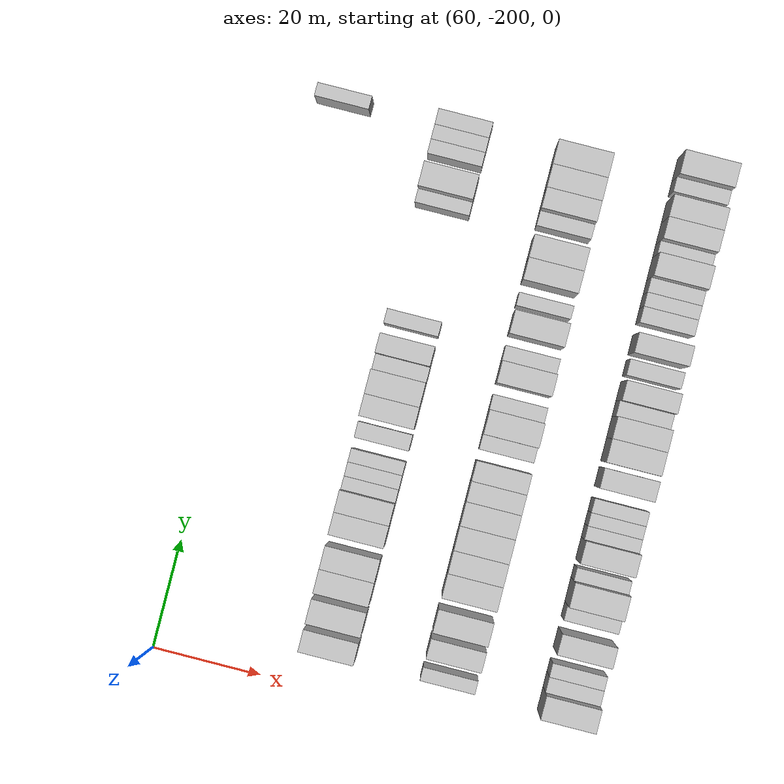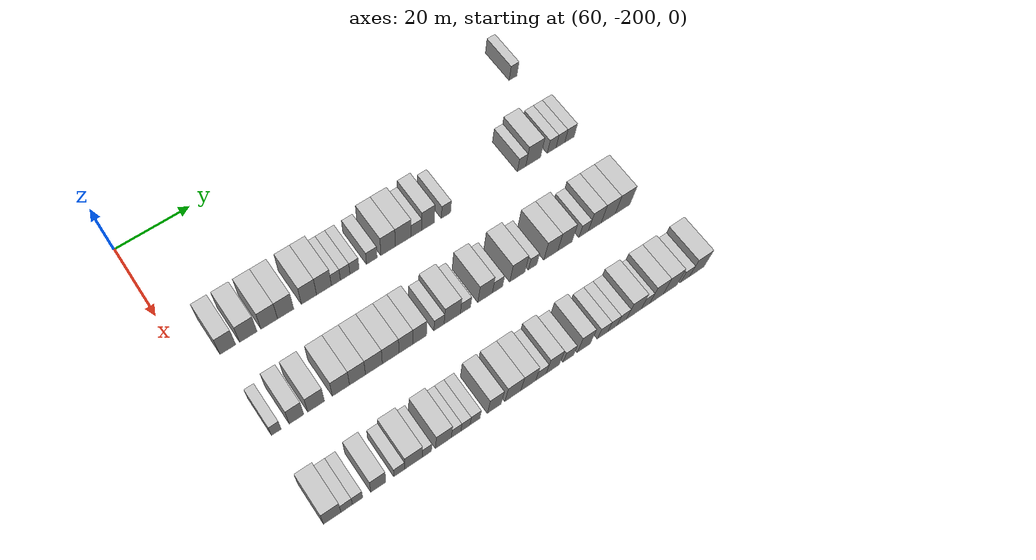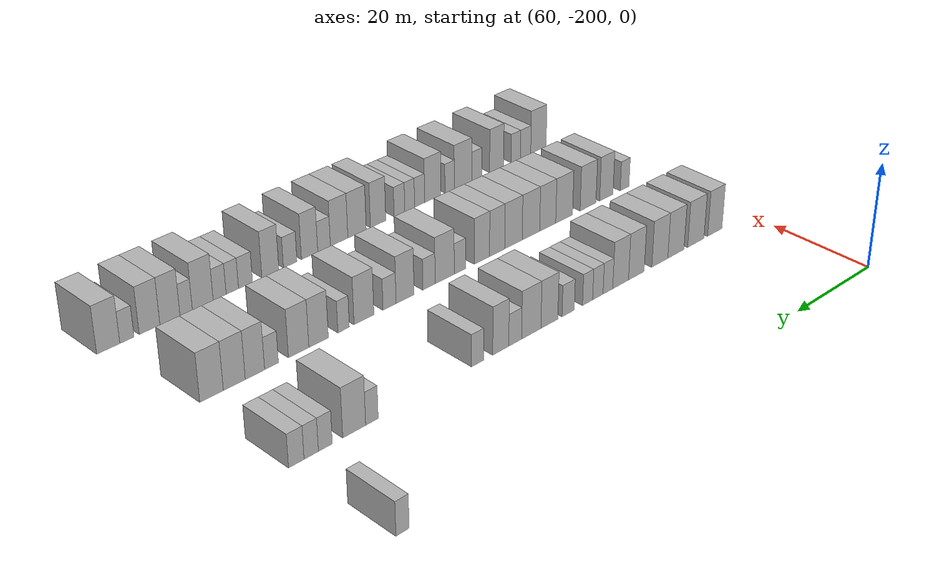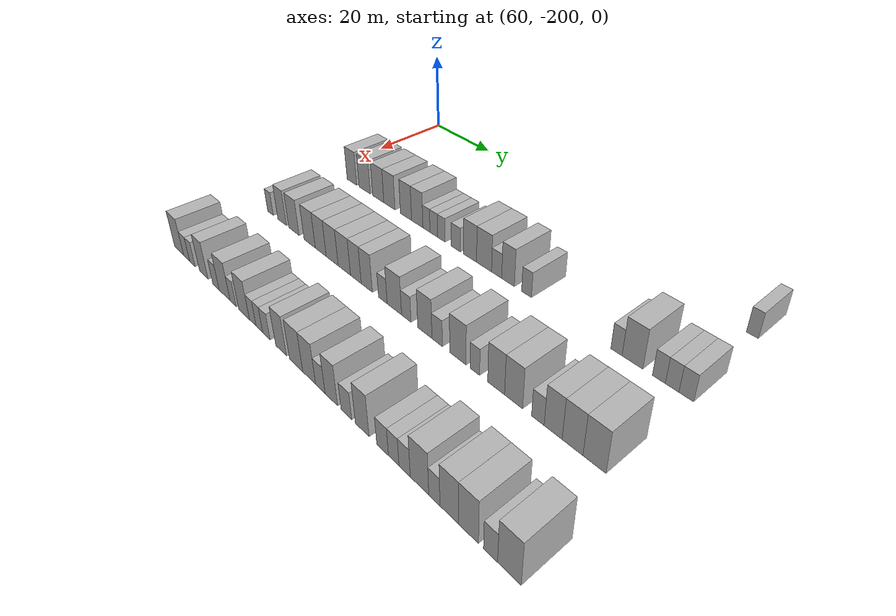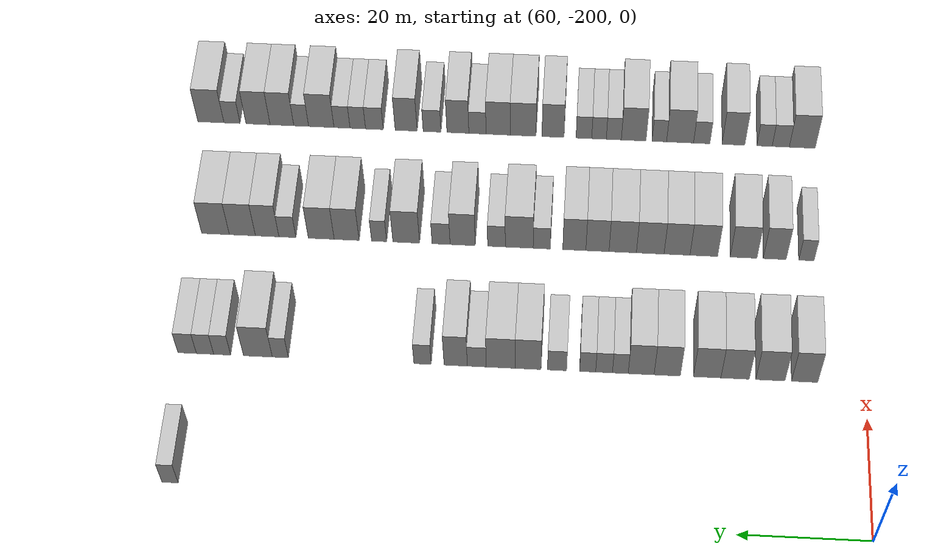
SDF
<sdf version="1.6">
 <world name="default">
  <model name="building_452">
   <static>1</static>
   <pose>69.0000 -95.8036 0 0.000000 0.000000 0.000000</pose>
   <link name="link">
    <pose>0 0 3.00 0 0 0</pose>
    <collision name="collision"><geometry><box><size>10.0000 2.4370 6.0000</size></box></geometry></collision>
    <visual name="visual">
     <cast_shadows>0</cast_shadows>
     <geometry><box><size>10.0000 2.4370 6.0000</size></box></geometry>
     <material>
      <script>
       <uri>model://HANNAS_wall/materials/scripts</uri>
       <uri>model://HANNAS_wall/materials/textures</uri>
       <name>vrc/HANNAS_wall</name>
      </script>
     </material>
    </visual>
   </link>
  </model>
  <model name="building_624">
   <static>1</static>
   <pose>91.0000 -190.6196 0 0.000000 0.000000 0.000000</pose>
   <link name="link">
    <pose>0 0 4.50 0 0 0</pose>
    <collision name="collision"><geometry><box><size>10.0000 4.0217 9.0000</size></box></geometry></collision>
    <visual name="visual">
     <cast_shadows>0</cast_shadows>
     <geometry><box><size>10.0000 4.0217 9.0000</size></box></geometry>
     <material>
      <script>
       <uri>model://HANNAS_wall/materials/scripts</uri>
       <uri>model://HANNAS_wall/materials/textures</uri>
       <name>vrc/HANNAS_wall</name>
      </script>
     </material>
    </visual>
   </link>
  </model>
  <model name="building_625">
   <static>1</static>
   <pose>91.0000 -185.3649 0 0.000000 0.000000 0.000000</pose>
   <link name="link">
    <pose>0 0 4.50 0 0 0</pose>
    <collision name="collision"><geometry><box><size>10.0000 4.4876 9.0000</size></box></geometry></collision>
    <visual name="visual">
     <cast_shadows>0</cast_shadows>
     <geometry><box><size>10.0000 4.4876 9.0000</size></box></geometry>
     <material>
      <script>
       <uri>model://HANNAS_wall/materials/scripts</uri>
       <uri>model://HANNAS_wall/materials/textures</uri>
       <name>vrc/HANNAS_wall</name>
      </script>
     </material>
    </visual>
   </link>
  </model>
  <model name="building_626">
   <static>1</static>
   <pose>91.0000 -179.9483 0 0.000000 0.000000 0.000000</pose>
   <link name="link">
    <pose>0 0 4.50 0 0 0</pose>
    <collision name="collision"><geometry><box><size>10.0000 4.3456 9.0000</size></box></geometry></collision>
    <visual name="visual">
     <cast_shadows>0</cast_shadows>
     <geometry><box><size>10.0000 4.3456 9.0000</size></box></geometry>
     <material>
      <script>
       <uri>model://HANNAS_wall/materials/scripts</uri>
       <uri>model://HANNAS_wall/materials/textures</uri>
       <name>vrc/HANNAS_wall</name>
      </script>
     </material>
    </visual>
   </link>
  </model>
  <model name="building_627">
   <static>1</static>
   <pose>91.0000 -175.6586 0 0.000000 0.000000 0.000000</pose>
   <link name="link">
    <pose>0 0 4.50 0 0 0</pose>
    <collision name="collision"><geometry><box><size>10.0000 4.2337 9.0000</size></box></geometry></collision>
    <visual name="visual">
     <cast_shadows>0</cast_shadows>
     <geometry><box><size>10.0000 4.2337 9.0000</size></box></geometry>
     <material>
      <script>
       <uri>model://HANNAS_wall/materials/scripts</uri>
       <uri>model://HANNAS_wall/materials/textures</uri>
       <name>vrc/HANNAS_wall</name>
      </script>
     </material>
    </visual>
   </link>
  </model>
  <model name="building_628">
   <static>1</static>
   <pose>91.0000 -169.5216 0 0.000000 0.000000 0.000000</pose>
   <link name="link">
    <pose>0 0 4.50 0 0 0</pose>
    <collision name="collision"><geometry><box><size>10.0000 4.0404 9.0000</size></box></geometry></collision>
    <visual name="visual">
     <cast_shadows>0</cast_shadows>
     <geometry><box><size>10.0000 4.0404 9.0000</size></box></geometry>
     <material>
      <script>
       <uri>model://HANNAS_wall/materials/scripts</uri>
       <uri>model://HANNAS_wall/materials/textures</uri>
       <name>vrc/HANNAS_wall</name>
      </script>
     </material>
    </visual>
   </link>
  </model>
  <model name="building_629">
   <static>1</static>
   <pose>91.0000 -165.5064 0 0.000000 0.000000 0.000000</pose>
   <link name="link">
    <pose>0 0 4.50 0 0 0</pose>
    <collision name="collision"><geometry><box><size>10.0000 3.9899 9.0000</size></box></geometry></collision>
    <visual name="visual">
     <cast_shadows>0</cast_shadows>
     <geometry><box><size>10.0000 3.9899 9.0000</size></box></geometry>
     <material>
      <script>
       <uri>model://HANNAS_wall/materials/scripts</uri>
       <uri>model://HANNAS_wall/materials/textures</uri>
       <name>vrc/HANNAS_wall</name>
      </script>
     </material>
    </visual>
   </link>
  </model>
  <model name="building_630">
   <static>1</static>
   <pose>91.0000 -162.2946 0 0.000000 0.000000 0.000000</pose>
   <link name="link">
    <pose>0 0 3.00 0 0 0</pose>
    <collision name="collision"><geometry><box><size>10.0000 2.4337 6.0000</size></box></geometry></collision>
    <visual name="visual">
     <cast_shadows>0</cast_shadows>
     <geometry><box><size>10.0000 2.4337 6.0000</size></box></geometry>
     <material>
      <script>
       <uri>model://HANNAS_wall/materials/scripts</uri>
       <uri>model://HANNAS_wall/materials/textures</uri>
       <name>vrc/HANNAS_wall</name>
      </script>
     </material>
    </visual>
   </link>
  </model>
  <model name="building_631">
   <static>1</static>
   <pose>91.0000 -159.7884 0 0.000000 0.000000 0.000000</pose>
   <link name="link">
    <pose>0 0 3.00 0 0 0</pose>
    <collision name="collision"><geometry><box><size>10.0000 2.5787 6.0000</size></box></geometry></collision>
    <visual name="visual">
     <cast_shadows>0</cast_shadows>
     <geometry><box><size>10.0000 2.5787 6.0000</size></box></geometry>
     <material>
      <script>
       <uri>model://HANNAS_wall/materials/scripts</uri>
       <uri>model://HANNAS_wall/materials/textures</uri>
       <name>vrc/HANNAS_wall</name>
      </script>
     </material>
    </visual>
   </link>
  </model>
  <model name="building_632">
   <static>1</static>
   <pose>91.0000 -157.2615 0 0.000000 0.000000 0.000000</pose>
   <link name="link">
    <pose>0 0 3.00 0 0 0</pose>
    <collision name="collision"><geometry><box><size>10.0000 2.4750 6.0000</size></box></geometry></collision>
    <visual name="visual">
     <cast_shadows>0</cast_shadows>
     <geometry><box><size>10.0000 2.4750 6.0000</size></box></geometry>
     <material>
      <script>
       <uri>model://HANNAS_wall/materials/scripts</uri>
       <uri>model://HANNAS_wall/materials/textures</uri>
       <name>vrc/HANNAS_wall</name>
      </script>
     </material>
    </visual>
   </link>
  </model>
  <model name="building_633">
   <static>1</static>
   <pose>91.0000 -152.5520 0 0.000000 0.000000 0.000000</pose>
   <link name="link">
    <pose>0 0 3.00 0 0 0</pose>
    <collision name="collision"><geometry><box><size>10.0000 2.9441 6.0000</size></box></geometry></collision>
    <visual name="visual">
     <cast_shadows>0</cast_shadows>
     <geometry><box><size>10.0000 2.9441 6.0000</size></box></geometry>
     <material>
      <script>
       <uri>model://HANNAS_wall/materials/scripts</uri>
       <uri>model://HANNAS_wall/materials/textures</uri>
       <name>vrc/HANNAS_wall</name>
      </script>
     </material>
    </visual>
   </link>
  </model>
  <model name="building_634">
   <static>1</static>
   <pose>91.0000 -148.0857 0 0.000000 0.000000 0.000000</pose>
   <link name="link">
    <pose>0 0 4.50 0 0 0</pose>
    <collision name="collision"><geometry><box><size>10.0000 3.9885 9.0000</size></box></geometry></collision>
    <visual name="visual">
     <cast_shadows>0</cast_shadows>
     <geometry><box><size>10.0000 3.9885 9.0000</size></box></geometry>
     <material>
      <script>
       <uri>model://HANNAS_wall/materials/scripts</uri>
       <uri>model://HANNAS_wall/materials/textures</uri>
       <name>vrc/HANNAS_wall</name>
      </script>
     </material>
    </visual>
   </link>
  </model>
  <model name="building_635">
   <static>1</static>
   <pose>91.0000 -143.8581 0 0.000000 0.000000 0.000000</pose>
   <link name="link">
    <pose>0 0 4.50 0 0 0</pose>
    <collision name="collision"><geometry><box><size>10.0000 4.4666 9.0000</size></box></geometry></collision>
    <visual name="visual">
     <cast_shadows>0</cast_shadows>
     <geometry><box><size>10.0000 4.4666 9.0000</size></box></geometry>
     <material>
      <script>
       <uri>model://HANNAS_wall/materials/scripts</uri>
       <uri>model://HANNAS_wall/materials/textures</uri>
       <name>vrc/HANNAS_wall</name>
      </script>
     </material>
    </visual>
   </link>
  </model>
  <model name="building_636">
   <static>1</static>
   <pose>91.0000 -140.1616 0 0.000000 0.000000 0.000000</pose>
   <link name="link">
    <pose>0 0 3.00 0 0 0</pose>
    <collision name="collision"><geometry><box><size>10.0000 2.9263 6.0000</size></box></geometry></collision>
    <visual name="visual">
     <cast_shadows>0</cast_shadows>
     <geometry><box><size>10.0000 2.9263 6.0000</size></box></geometry>
     <material>
      <script>
       <uri>model://HANNAS_wall/materials/scripts</uri>
       <uri>model://HANNAS_wall/materials/textures</uri>
       <name>vrc/HANNAS_wall</name>
      </script>
     </material>
    </visual>
   </link>
  </model>
  <model name="building_637">
   <static>1</static>
   <pose>91.0000 -136.8978 0 0.000000 0.000000 0.000000</pose>
   <link name="link">
    <pose>0 0 4.50 0 0 0</pose>
    <collision name="collision"><geometry><box><size>10.0000 3.6014 9.0000</size></box></geometry></collision>
    <visual name="visual">
     <cast_shadows>0</cast_shadows>
     <geometry><box><size>10.0000 3.6014 9.0000</size></box></geometry>
     <material>
      <script>
       <uri>model://HANNAS_wall/materials/scripts</uri>
       <uri>model://HANNAS_wall/materials/textures</uri>
       <name>vrc/HANNAS_wall</name>
      </script>
     </material>
    </visual>
   </link>
  </model>
  <model name="building_638">
   <static>1</static>
   <pose>91.0000 -131.7656 0 0.000000 0.000000 0.000000</pose>
   <link name="link">
    <pose>0 0 3.00 0 0 0</pose>
    <collision name="collision"><geometry><box><size>10.0000 2.6628 6.0000</size></box></geometry></collision>
    <visual name="visual">
     <cast_shadows>0</cast_shadows>
     <geometry><box><size>10.0000 2.6628 6.0000</size></box></geometry>
     <material>
      <script>
       <uri>model://HANNAS_wall/materials/scripts</uri>
       <uri>model://HANNAS_wall/materials/textures</uri>
       <name>vrc/HANNAS_wall</name>
      </script>
     </material>
    </visual>
   </link>
  </model>
  <model name="building_639">
   <static>1</static>
   <pose>91.0000 -109.6894 0 0.000000 0.000000 0.000000</pose>
   <link name="link">
    <pose>0 0 3.00 0 0 0</pose>
    <collision name="collision"><geometry><box><size>10.0000 2.4965 6.0000</size></box></geometry></collision>
    <visual name="visual">
     <cast_shadows>0</cast_shadows>
     <geometry><box><size>10.0000 2.4965 6.0000</size></box></geometry>
     <material>
      <script>
       <uri>model://HANNAS_wall/materials/scripts</uri>
       <uri>model://HANNAS_wall/materials/textures</uri>
       <name>vrc/HANNAS_wall</name>
      </script>
     </material>
    </visual>
   </link>
  </model>
  <model name="building_640">
   <static>1</static>
   <pose>91.0000 -106.2002 0 0.000000 0.000000 0.000000</pose>
   <link name="link">
    <pose>0 0 4.50 0 0 0</pose>
    <collision name="collision"><geometry><box><size>10.0000 4.4820 9.0000</size></box></geometry></collision>
    <visual name="visual">
     <cast_shadows>0</cast_shadows>
     <geometry><box><size>10.0000 4.4820 9.0000</size></box></geometry>
     <material>
      <script>
       <uri>model://HANNAS_wall/materials/scripts</uri>
       <uri>model://HANNAS_wall/materials/textures</uri>
       <name>vrc/HANNAS_wall</name>
      </script>
     </material>
    </visual>
   </link>
  </model>
  <model name="building_641">
   <static>1</static>
   <pose>91.0000 -100.6351 0 0.000000 0.000000 0.000000</pose>
   <link name="link">
    <pose>0 0 3.00 0 0 0</pose>
    <collision name="collision"><geometry><box><size>10.0000 2.6483 6.0000</size></box></geometry></collision>
    <visual name="visual">
     <cast_shadows>0</cast_shadows>
     <geometry><box><size>10.0000 2.6483 6.0000</size></box></geometry>
     <material>
      <script>
       <uri>model://HANNAS_wall/materials/scripts</uri>
       <uri>model://HANNAS_wall/materials/textures</uri>
       <name>vrc/HANNAS_wall</name>
      </script>
     </material>
    </visual>
   </link>
  </model>
  <model name="building_642">
   <static>1</static>
   <pose>91.0000 -97.9629 0 0.000000 0.000000 0.000000</pose>
   <link name="link">
    <pose>0 0 3.00 0 0 0</pose>
    <collision name="collision"><geometry><box><size>10.0000 2.6959 6.0000</size></box></geometry></collision>
    <visual name="visual">
     <cast_shadows>0</cast_shadows>
     <geometry><box><size>10.0000 2.6959 6.0000</size></box></geometry>
     <material>
      <script>
       <uri>model://HANNAS_wall/materials/scripts</uri>
       <uri>model://HANNAS_wall/materials/textures</uri>
       <name>vrc/HANNAS_wall</name>
      </script>
     </material>
    </visual>
   </link>
  </model>
  <model name="building_643">
   <static>1</static>
   <pose>91.0000 -95.1738 0 0.000000 0.000000 0.000000</pose>
   <link name="link">
    <pose>0 0 3.00 0 0 0</pose>
    <collision name="collision"><geometry><box><size>10.0000 2.8823 6.0000</size></box></geometry></collision>
    <visual name="visual">
     <cast_shadows>0</cast_shadows>
     <geometry><box><size>10.0000 2.8823 6.0000</size></box></geometry>
     <material>
      <script>
       <uri>model://HANNAS_wall/materials/scripts</uri>
       <uri>model://HANNAS_wall/materials/textures</uri>
       <name>vrc/HANNAS_wall</name>
      </script>
     </material>
    </visual>
   </link>
  </model>
  <model name="building_816">
   <static>1</static>
   <pose>113.0000 -191.4887 0 0.000000 0.000000 0.000000</pose>
   <link name="link">
    <pose>0 0 3.00 0 0 0</pose>
    <collision name="collision"><geometry><box><size>10.0000 2.4426 6.0000</size></box></geometry></collision>
    <visual name="visual">
     <cast_shadows>0</cast_shadows>
     <geometry><box><size>10.0000 2.4426 6.0000</size></box></geometry>
     <material>
      <script>
       <uri>model://HANNAS_wall/materials/scripts</uri>
       <uri>model://HANNAS_wall/materials/textures</uri>
       <name>vrc/HANNAS_wall</name>
      </script>
     </material>
    </visual>
   </link>
  </model>
  <model name="building_817">
   <static>1</static>
   <pose>113.0000 -186.4352 0 0.000000 0.000000 0.000000</pose>
   <link name="link">
    <pose>0 0 4.50 0 0 0</pose>
    <collision name="collision"><geometry><box><size>10.0000 3.6644 9.0000</size></box></geometry></collision>
    <visual name="visual">
     <cast_shadows>0</cast_shadows>
     <geometry><box><size>10.0000 3.6644 9.0000</size></box></geometry>
     <material>
      <script>
       <uri>model://HANNAS_wall/materials/scripts</uri>
       <uri>model://HANNAS_wall/materials/textures</uri>
       <name>vrc/HANNAS_wall</name>
      </script>
     </material>
    </visual>
   </link>
  </model>
  <model name="building_818">
   <static>1</static>
   <pose>113.0000 -181.4667 0 0.000000 0.000000 0.000000</pose>
   <link name="link">
    <pose>0 0 4.50 0 0 0</pose>
    <collision name="collision"><geometry><box><size>10.0000 4.2726 9.0000</size></box></geometry></collision>
    <visual name="visual">
     <cast_shadows>0</cast_shadows>
     <geometry><box><size>10.0000 4.2726 9.0000</size></box></geometry>
     <material>
      <script>
       <uri>model://HANNAS_wall/materials/scripts</uri>
       <uri>model://HANNAS_wall/materials/textures</uri>
       <name>vrc/HANNAS_wall</name>
      </script>
     </material>
    </visual>
   </link>
  </model>
  <model name="building_819">
   <static>1</static>
   <pose>113.0000 -175.1232 0 0.000000 0.000000 0.000000</pose>
   <link name="link">
    <pose>0 0 4.50 0 0 0</pose>
    <collision name="collision"><geometry><box><size>10.0000 4.4143 9.0000</size></box></geometry></collision>
    <visual name="visual">
     <cast_shadows>0</cast_shadows>
     <geometry><box><size>10.0000 4.4143 9.0000</size></box></geometry>
     <material>
      <script>
       <uri>model://HANNAS_wall/materials/scripts</uri>
       <uri>model://HANNAS_wall/materials/textures</uri>
       <name>vrc/HANNAS_wall</name>
      </script>
     </material>
    </visual>
   </link>
  </model>
  <model name="building_820">
   <static>1</static>
   <pose>113.0000 -170.8399 0 0.000000 0.000000 0.000000</pose>
   <link name="link">
    <pose>0 0 4.50 0 0 0</pose>
    <collision name="collision"><geometry><box><size>10.0000 4.1524 9.0000</size></box></geometry></collision>
    <visual name="visual">
     <cast_shadows>0</cast_shadows>
     <geometry><box><size>10.0000 4.1524 9.0000</size></box></geometry>
     <material>
      <script>
       <uri>model://HANNAS_wall/materials/scripts</uri>
       <uri>model://HANNAS_wall/materials/textures</uri>
       <name>vrc/HANNAS_wall</name>
      </script>
     </material>
    </visual>
   </link>
  </model>
  <model name="building_821">
   <static>1</static>
   <pose>113.0000 -166.5519 0 0.000000 0.000000 0.000000</pose>
   <link name="link">
    <pose>0 0 4.50 0 0 0</pose>
    <collision name="collision"><geometry><box><size>10.0000 4.4236 9.0000</size></box></geometry></collision>
    <visual name="visual">
     <cast_shadows>0</cast_shadows>
     <geometry><box><size>10.0000 4.4236 9.0000</size></box></geometry>
     <material>
      <script>
       <uri>model://HANNAS_wall/materials/scripts</uri>
       <uri>model://HANNAS_wall/materials/textures</uri>
       <name>vrc/HANNAS_wall</name>
      </script>
     </material>
    </visual>
   </link>
  </model>
  <model name="building_822">
   <static>1</static>
   <pose>113.0000 -162.1482 0 0.000000 0.000000 0.000000</pose>
   <link name="link">
    <pose>0 0 4.50 0 0 0</pose>
    <collision name="collision"><geometry><box><size>10.0000 4.3838 9.0000</size></box></geometry></collision>
    <visual name="visual">
     <cast_shadows>0</cast_shadows>
     <geometry><box><size>10.0000 4.3838 9.0000</size></box></geometry>
     <material>
      <script>
       <uri>model://HANNAS_wall/materials/scripts</uri>
       <uri>model://HANNAS_wall/materials/textures</uri>
       <name>vrc/HANNAS_wall</name>
      </script>
     </material>
    </visual>
   </link>
  </model>
  <model name="building_823">
   <static>1</static>
   <pose>113.0000 -158.1034 0 0.000000 0.000000 0.000000</pose>
   <link name="link">
    <pose>0 0 4.50 0 0 0</pose>
    <collision name="collision"><geometry><box><size>10.0000 3.7057 9.0000</size></box></geometry></collision>
    <visual name="visual">
     <cast_shadows>0</cast_shadows>
     <geometry><box><size>10.0000 3.7057 9.0000</size></box></geometry>
     <material>
      <script>
       <uri>model://HANNAS_wall/materials/scripts</uri>
       <uri>model://HANNAS_wall/materials/textures</uri>
       <name>vrc/HANNAS_wall</name>
      </script>
     </material>
    </visual>
   </link>
  </model>
  <model name="building_824">
   <static>1</static>
   <pose>113.0000 -154.4006 0 0.000000 0.000000 0.000000</pose>
   <link name="link">
    <pose>0 0 4.50 0 0 0</pose>
    <collision name="collision"><geometry><box><size>10.0000 3.7001 9.0000</size></box></geometry></collision>
    <visual name="visual">
     <cast_shadows>0</cast_shadows>
     <geometry><box><size>10.0000 3.7001 9.0000</size></box></geometry>
     <material>
      <script>
       <uri>model://HANNAS_wall/materials/scripts</uri>
       <uri>model://HANNAS_wall/materials/textures</uri>
       <name>vrc/HANNAS_wall</name>
      </script>
     </material>
    </visual>
   </link>
  </model>
  <model name="building_825">
   <static>1</static>
   <pose>113.0000 -149.1745 0 0.000000 0.000000 0.000000</pose>
   <link name="link">
    <pose>0 0 3.00 0 0 0</pose>
    <collision name="collision"><geometry><box><size>10.0000 2.7520 6.0000</size></box></geometry></collision>
    <visual name="visual">
     <cast_shadows>0</cast_shadows>
     <geometry><box><size>10.0000 2.7520 6.0000</size></box></geometry>
     <material>
      <script>
       <uri>model://HANNAS_wall/materials/scripts</uri>
       <uri>model://HANNAS_wall/materials/textures</uri>
       <name>vrc/HANNAS_wall</name>
      </script>
     </material>
    </visual>
   </link>
  </model>
  <model name="building_826">
   <static>1</static>
   <pose>113.0000 -145.5636 0 0.000000 0.000000 0.000000</pose>
   <link name="link">
    <pose>0 0 4.50 0 0 0</pose>
    <collision name="collision"><geometry><box><size>10.0000 4.4698 9.0000</size></box></geometry></collision>
    <visual name="visual">
     <cast_shadows>0</cast_shadows>
     <geometry><box><size>10.0000 4.4698 9.0000</size></box></geometry>
     <material>
      <script>
       <uri>model://HANNAS_wall/materials/scripts</uri>
       <uri>model://HANNAS_wall/materials/textures</uri>
       <name>vrc/HANNAS_wall</name>
      </script>
     </material>
    </visual>
   </link>
  </model>
  <model name="building_827">
   <static>1</static>
   <pose>113.0000 -141.9126 0 0.000000 0.000000 0.000000</pose>
   <link name="link">
    <pose>0 0 3.00 0 0 0</pose>
    <collision name="collision"><geometry><box><size>10.0000 2.8323 6.0000</size></box></geometry></collision>
    <visual name="visual">
     <cast_shadows>0</cast_shadows>
     <geometry><box><size>10.0000 2.8323 6.0000</size></box></geometry>
     <material>
      <script>
       <uri>model://HANNAS_wall/materials/scripts</uri>
       <uri>model://HANNAS_wall/materials/textures</uri>
       <name>vrc/HANNAS_wall</name>
      </script>
     </material>
    </visual>
   </link>
  </model>
  <model name="building_828">
   <static>1</static>
   <pose>113.0000 -136.4732 0 0.000000 0.000000 0.000000</pose>
   <link name="link">
    <pose>0 0 4.50 0 0 0</pose>
    <collision name="collision"><geometry><box><size>10.0000 4.0464 9.0000</size></box></geometry></collision>
    <visual name="visual">
     <cast_shadows>0</cast_shadows>
     <geometry><box><size>10.0000 4.0464 9.0000</size></box></geometry>
     <material>
      <script>
       <uri>model://HANNAS_wall/materials/scripts</uri>
       <uri>model://HANNAS_wall/materials/textures</uri>
       <name>vrc/HANNAS_wall</name>
      </script>
     </material>
    </visual>
   </link>
  </model>
  <model name="building_829">
   <static>1</static>
   <pose>113.0000 -133.0011 0 0.000000 0.000000 0.000000</pose>
   <link name="link">
    <pose>0 0 3.00 0 0 0</pose>
    <collision name="collision"><geometry><box><size>10.0000 2.8979 6.0000</size></box></geometry></collision>
    <visual name="visual">
     <cast_shadows>0</cast_shadows>
     <geometry><box><size>10.0000 2.8979 6.0000</size></box></geometry>
     <material>
      <script>
       <uri>model://HANNAS_wall/materials/scripts</uri>
       <uri>model://HANNAS_wall/materials/textures</uri>
       <name>vrc/HANNAS_wall</name>
      </script>
     </material>
    </visual>
   </link>
  </model>
  <model name="building_830">
   <static>1</static>
   <pose>113.0000 -127.4015 0 0.000000 0.000000 0.000000</pose>
   <link name="link">
    <pose>0 0 4.50 0 0 0</pose>
    <collision name="collision"><geometry><box><size>10.0000 4.3014 9.0000</size></box></geometry></collision>
    <visual name="visual">
     <cast_shadows>0</cast_shadows>
     <geometry><box><size>10.0000 4.3014 9.0000</size></box></geometry>
     <material>
      <script>
       <uri>model://HANNAS_wall/materials/scripts</uri>
       <uri>model://HANNAS_wall/materials/textures</uri>
       <name>vrc/HANNAS_wall</name>
      </script>
     </material>
    </visual>
   </link>
  </model>
  <model name="building_831">
   <static>1</static>
   <pose>113.0000 -123.0321 0 0.000000 0.000000 0.000000</pose>
   <link name="link">
    <pose>0 0 3.00 0 0 0</pose>
    <collision name="collision"><geometry><box><size>10.0000 2.4374 6.0000</size></box></geometry></collision>
    <visual name="visual">
     <cast_shadows>0</cast_shadows>
     <geometry><box><size>10.0000 2.4374 6.0000</size></box></geometry>
     <material>
      <script>
       <uri>model://HANNAS_wall/materials/scripts</uri>
       <uri>model://HANNAS_wall/materials/textures</uri>
       <name>vrc/HANNAS_wall</name>
      </script>
     </material>
    </visual>
   </link>
  </model>
  <model name="building_832">
   <static>1</static>
   <pose>113.0000 -117.7915 0 0.000000 0.000000 0.000000</pose>
   <link name="link">
    <pose>0 0 4.50 0 0 0</pose>
    <collision name="collision"><geometry><box><size>10.0000 4.0438 9.0000</size></box></geometry></collision>
    <visual name="visual">
     <cast_shadows>0</cast_shadows>
     <geometry><box><size>10.0000 4.0438 9.0000</size></box></geometry>
     <material>
      <script>
       <uri>model://HANNAS_wall/materials/scripts</uri>
       <uri>model://HANNAS_wall/materials/textures</uri>
       <name>vrc/HANNAS_wall</name>
      </script>
     </material>
    </visual>
   </link>
  </model>
  <model name="building_833">
   <static>1</static>
   <pose>113.0000 -113.6832 0 0.000000 0.000000 0.000000</pose>
   <link name="link">
    <pose>0 0 4.50 0 0 0</pose>
    <collision name="collision"><geometry><box><size>10.0000 4.1727 9.0000</size></box></geometry></collision>
    <visual name="visual">
     <cast_shadows>0</cast_shadows>
     <geometry><box><size>10.0000 4.1727 9.0000</size></box></geometry>
     <material>
      <script>
       <uri>model://HANNAS_wall/materials/scripts</uri>
       <uri>model://HANNAS_wall/materials/textures</uri>
       <name>vrc/HANNAS_wall</name>
      </script>
     </material>
    </visual>
   </link>
  </model>
  <model name="building_834">
   <static>1</static>
   <pose>113.0000 -108.2224 0 0.000000 0.000000 0.000000</pose>
   <link name="link">
    <pose>0 0 3.00 0 0 0</pose>
    <collision name="collision"><geometry><box><size>10.0000 2.7489 6.0000</size></box></geometry></collision>
    <visual name="visual">
     <cast_shadows>0</cast_shadows>
     <geometry><box><size>10.0000 2.7489 6.0000</size></box></geometry>
     <material>
      <script>
       <uri>model://HANNAS_wall/materials/scripts</uri>
       <uri>model://HANNAS_wall/materials/textures</uri>
       <name>vrc/HANNAS_wall</name>
      </script>
     </material>
    </visual>
   </link>
  </model>
  <model name="building_835">
   <static>1</static>
   <pose>113.0000 -104.9455 0 0.000000 0.000000 0.000000</pose>
   <link name="link">
    <pose>0 0 4.50 0 0 0</pose>
    <collision name="collision"><geometry><box><size>10.0000 3.8048 9.0000</size></box></geometry></collision>
    <visual name="visual">
     <cast_shadows>0</cast_shadows>
     <geometry><box><size>10.0000 3.8048 9.0000</size></box></geometry>
     <material>
      <script>
       <uri>model://HANNAS_wall/materials/scripts</uri>
       <uri>model://HANNAS_wall/materials/textures</uri>
       <name>vrc/HANNAS_wall</name>
      </script>
     </material>
    </visual>
   </link>
  </model>
  <model name="building_836">
   <static>1</static>
   <pose>113.0000 -100.9341 0 0.000000 0.000000 0.000000</pose>
   <link name="link">
    <pose>0 0 4.50 0 0 0</pose>
    <collision name="collision"><geometry><box><size>10.0000 4.2181 9.0000</size></box></geometry></collision>
    <visual name="visual">
     <cast_shadows>0</cast_shadows>
     <geometry><box><size>10.0000 4.2181 9.0000</size></box></geometry>
     <material>
      <script>
       <uri>model://HANNAS_wall/materials/scripts</uri>
       <uri>model://HANNAS_wall/materials/textures</uri>
       <name>vrc/HANNAS_wall</name>
      </script>
     </material>
    </visual>
   </link>
  </model>
  <model name="building_837">
   <static>1</static>
   <pose>113.0000 -96.5921 0 0.000000 0.000000 0.000000</pose>
   <link name="link">
    <pose>0 0 4.50 0 0 0</pose>
    <collision name="collision"><geometry><box><size>10.0000 4.4660 9.0000</size></box></geometry></collision>
    <visual name="visual">
     <cast_shadows>0</cast_shadows>
     <geometry><box><size>10.0000 4.4660 9.0000</size></box></geometry>
     <material>
      <script>
       <uri>model://HANNAS_wall/materials/scripts</uri>
       <uri>model://HANNAS_wall/materials/textures</uri>
       <name>vrc/HANNAS_wall</name>
      </script>
     </material>
    </visual>
   </link>
  </model>
  <model name="building_995">
   <static>1</static>
   <pose>135.0000 -191.3927 0 0.000000 0.000000 0.000000</pose>
   <link name="link">
    <pose>0 0 4.50 0 0 0</pose>
    <collision name="collision"><geometry><box><size>10.0000 4.2755 9.0000</size></box></geometry></collision>
    <visual name="visual">
     <cast_shadows>0</cast_shadows>
     <geometry><box><size>10.0000 4.2755 9.0000</size></box></geometry>
     <material>
      <script>
       <uri>model://HANNAS_wall/materials/scripts</uri>
       <uri>model://HANNAS_wall/materials/textures</uri>
       <name>vrc/HANNAS_wall</name>
      </script>
     </material>
    </visual>
   </link>
  </model>
  <model name="building_996">
   <static>1</static>
   <pose>135.0000 -187.8408 0 0.000000 0.000000 0.000000</pose>
   <link name="link">
    <pose>0 0 3.00 0 0 0</pose>
    <collision name="collision"><geometry><box><size>10.0000 2.8283 6.0000</size></box></geometry></collision>
    <visual name="visual">
     <cast_shadows>0</cast_shadows>
     <geometry><box><size>10.0000 2.8283 6.0000</size></box></geometry>
     <material>
      <script>
       <uri>model://HANNAS_wall/materials/scripts</uri>
       <uri>model://HANNAS_wall/materials/textures</uri>
       <name>vrc/HANNAS_wall</name>
      </script>
     </material>
    </visual>
   </link>
  </model>
  <model name="building_997">
   <static>1</static>
   <pose>135.0000 -185.1556 0 0.000000 0.000000 0.000000</pose>
   <link name="link">
    <pose>0 0 3.00 0 0 0</pose>
    <collision name="collision"><geometry><box><size>10.0000 2.5421 6.0000</size></box></geometry></collision>
    <visual name="visual">
     <cast_shadows>0</cast_shadows>
     <geometry><box><size>10.0000 2.5421 6.0000</size></box></geometry>
     <material>
      <script>
       <uri>model://HANNAS_wall/materials/scripts</uri>
       <uri>model://HANNAS_wall/materials/textures</uri>
       <name>vrc/HANNAS_wall</name>
      </script>
     </material>
    </visual>
   </link>
  </model>
  <model name="building_998">
   <static>1</static>
   <pose>135.0000 -179.9981 0 0.000000 0.000000 0.000000</pose>
   <link name="link">
    <pose>0 0 4.50 0 0 0</pose>
    <collision name="collision"><geometry><box><size>10.0000 3.7728 9.0000</size></box></geometry></collision>
    <visual name="visual">
     <cast_shadows>0</cast_shadows>
     <geometry><box><size>10.0000 3.7728 9.0000</size></box></geometry>
     <material>
      <script>
       <uri>model://HANNAS_wall/materials/scripts</uri>
       <uri>model://HANNAS_wall/materials/textures</uri>
       <name>vrc/HANNAS_wall</name>
      </script>
     </material>
    </visual>
   </link>
  </model>
  <model name="building_999">
   <static>1</static>
   <pose>135.0000 -174.7530 0 0.000000 0.000000 0.000000</pose>
   <link name="link">
    <pose>0 0 3.00 0 0 0</pose>
    <collision name="collision"><geometry><box><size>10.0000 2.7176 6.0000</size></box></geometry></collision>
    <visual name="visual">
     <cast_shadows>0</cast_shadows>
     <geometry><box><size>10.0000 2.7176 6.0000</size></box></geometry>
     <material>
      <script>
       <uri>model://HANNAS_wall/materials/scripts</uri>
       <uri>model://HANNAS_wall/materials/textures</uri>
       <name>vrc/HANNAS_wall</name>
      </script>
     </material>
    </visual>
   </link>
  </model>
  <model name="building_1000">
   <static>1</static>
   <pose>135.0000 -171.1524 0 0.000000 0.000000 0.000000</pose>
   <link name="link">
    <pose>0 0 4.50 0 0 0</pose>
    <collision name="collision"><geometry><box><size>10.0000 4.4837 9.0000</size></box></geometry></collision>
    <visual name="visual">
     <cast_shadows>0</cast_shadows>
     <geometry><box><size>10.0000 4.4837 9.0000</size></box></geometry>
     <material>
      <script>
       <uri>model://HANNAS_wall/materials/scripts</uri>
       <uri>model://HANNAS_wall/materials/textures</uri>
       <name>vrc/HANNAS_wall</name>
      </script>
     </material>
    </visual>
   </link>
  </model>
  <model name="building_1001">
   <static>1</static>
   <pose>135.0000 -167.7093 0 0.000000 0.000000 0.000000</pose>
   <link name="link">
    <pose>0 0 3.00 0 0 0</pose>
    <collision name="collision"><geometry><box><size>10.0000 2.4024 6.0000</size></box></geometry></collision>
    <visual name="visual">
     <cast_shadows>0</cast_shadows>
     <geometry><box><size>10.0000 2.4024 6.0000</size></box></geometry>
     <material>
      <script>
       <uri>model://HANNAS_wall/materials/scripts</uri>
       <uri>model://HANNAS_wall/materials/textures</uri>
       <name>vrc/HANNAS_wall</name>
      </script>
     </material>
    </visual>
   </link>
  </model>
  <model name="building_1002">
   <static>1</static>
   <pose>135.0000 -163.4562 0 0.000000 0.000000 0.000000</pose>
   <link name="link">
    <pose>0 0 4.50 0 0 0</pose>
    <collision name="collision"><geometry><box><size>10.0000 4.1038 9.0000</size></box></geometry></collision>
    <visual name="visual">
     <cast_shadows>0</cast_shadows>
     <geometry><box><size>10.0000 4.1038 9.0000</size></box></geometry>
     <material>
      <script>
       <uri>model://HANNAS_wall/materials/scripts</uri>
       <uri>model://HANNAS_wall/materials/textures</uri>
       <name>vrc/HANNAS_wall</name>
      </script>
     </material>
    </visual>
   </link>
  </model>
  <model name="building_1003">
   <static>1</static>
   <pose>135.0000 -160.1525 0 0.000000 0.000000 0.000000</pose>
   <link name="link">
    <pose>0 0 3.00 0 0 0</pose>
    <collision name="collision"><geometry><box><size>10.0000 2.5036 6.0000</size></box></geometry></collision>
    <visual name="visual">
     <cast_shadows>0</cast_shadows>
     <geometry><box><size>10.0000 2.5036 6.0000</size></box></geometry>
     <material>
      <script>
       <uri>model://HANNAS_wall/materials/scripts</uri>
       <uri>model://HANNAS_wall/materials/textures</uri>
       <name>vrc/HANNAS_wall</name>
      </script>
     </material>
    </visual>
   </link>
  </model>
  <model name="building_1004">
   <static>1</static>
   <pose>135.0000 -157.6896 0 0.000000 0.000000 0.000000</pose>
   <link name="link">
    <pose>0 0 3.00 0 0 0</pose>
    <collision name="collision"><geometry><box><size>10.0000 2.4222 6.0000</size></box></geometry></collision>
    <visual name="visual">
     <cast_shadows>0</cast_shadows>
     <geometry><box><size>10.0000 2.4222 6.0000</size></box></geometry>
     <material>
      <script>
       <uri>model://HANNAS_wall/materials/scripts</uri>
       <uri>model://HANNAS_wall/materials/textures</uri>
       <name>vrc/HANNAS_wall</name>
      </script>
     </material>
    </visual>
   </link>
  </model>
  <model name="building_1005">
   <static>1</static>
   <pose>135.0000 -155.1787 0 0.000000 0.000000 0.000000</pose>
   <link name="link">
    <pose>0 0 3.00 0 0 0</pose>
    <collision name="collision"><geometry><box><size>10.0000 2.5997 6.0000</size></box></geometry></collision>
    <visual name="visual">
     <cast_shadows>0</cast_shadows>
     <geometry><box><size>10.0000 2.5997 6.0000</size></box></geometry>
     <material>
      <script>
       <uri>model://HANNAS_wall/materials/scripts</uri>
       <uri>model://HANNAS_wall/materials/textures</uri>
       <name>vrc/HANNAS_wall</name>
      </script>
     </material>
    </visual>
   </link>
  </model>
  <model name="building_1006">
   <static>1</static>
   <pose>135.0000 -150.0459 0 0.000000 0.000000 0.000000</pose>
   <link name="link">
    <pose>0 0 4.50 0 0 0</pose>
    <collision name="collision"><geometry><box><size>10.0000 3.6660 9.0000</size></box></geometry></collision>
    <visual name="visual">
     <cast_shadows>0</cast_shadows>
     <geometry><box><size>10.0000 3.6660 9.0000</size></box></geometry>
     <material>
      <script>
       <uri>model://HANNAS_wall/materials/scripts</uri>
       <uri>model://HANNAS_wall/materials/textures</uri>
       <name>vrc/HANNAS_wall</name>
      </script>
     </material>
    </visual>
   </link>
  </model>
  <model name="building_1007">
   <static>1</static>
   <pose>135.0000 -145.0619 0 0.000000 0.000000 0.000000</pose>
   <link name="link">
    <pose>0 0 4.50 0 0 0</pose>
    <collision name="collision"><geometry><box><size>10.0000 4.3020 9.0000</size></box></geometry></collision>
    <visual name="visual">
     <cast_shadows>0</cast_shadows>
     <geometry><box><size>10.0000 4.3020 9.0000</size></box></geometry>
     <material>
      <script>
       <uri>model://HANNAS_wall/materials/scripts</uri>
       <uri>model://HANNAS_wall/materials/textures</uri>
       <name>vrc/HANNAS_wall</name>
      </script>
     </material>
    </visual>
   </link>
  </model>
  <model name="building_1008">
   <static>1</static>
   <pose>135.0000 -140.9007 0 0.000000 0.000000 0.000000</pose>
   <link name="link">
    <pose>0 0 4.50 0 0 0</pose>
    <collision name="collision"><geometry><box><size>10.0000 4.0205 9.0000</size></box></geometry></collision>
    <visual name="visual">
     <cast_shadows>0</cast_shadows>
     <geometry><box><size>10.0000 4.0205 9.0000</size></box></geometry>
     <material>
      <script>
       <uri>model://HANNAS_wall/materials/scripts</uri>
       <uri>model://HANNAS_wall/materials/textures</uri>
       <name>vrc/HANNAS_wall</name>
      </script>
     </material>
    </visual>
   </link>
  </model>
  <model name="building_1009">
   <static>1</static>
   <pose>135.0000 -137.4521 0 0.000000 0.000000 0.000000</pose>
   <link name="link">
    <pose>0 0 3.00 0 0 0</pose>
    <collision name="collision"><geometry><box><size>10.0000 2.8767 6.0000</size></box></geometry></collision>
    <visual name="visual">
     <cast_shadows>0</cast_shadows>
     <geometry><box><size>10.0000 2.8767 6.0000</size></box></geometry>
     <material>
      <script>
       <uri>model://HANNAS_wall/materials/scripts</uri>
       <uri>model://HANNAS_wall/materials/textures</uri>
       <name>vrc/HANNAS_wall</name>
      </script>
     </material>
    </visual>
   </link>
  </model>
  <model name="building_1010">
   <static>1</static>
   <pose>135.0000 -134.1858 0 0.000000 0.000000 0.000000</pose>
   <link name="link">
    <pose>0 0 4.50 0 0 0</pose>
    <collision name="collision"><geometry><box><size>10.0000 3.6559 9.0000</size></box></geometry></collision>
    <visual name="visual">
     <cast_shadows>0</cast_shadows>
     <geometry><box><size>10.0000 3.6559 9.0000</size></box></geometry>
     <material>
      <script>
       <uri>model://HANNAS_wall/materials/scripts</uri>
       <uri>model://HANNAS_wall/materials/textures</uri>
       <name>vrc/HANNAS_wall</name>
      </script>
     </material>
    </visual>
   </link>
  </model>
  <model name="building_1011">
   <static>1</static>
   <pose>135.0000 -129.8709 0 0.000000 0.000000 0.000000</pose>
   <link name="link">
    <pose>0 0 3.00 0 0 0</pose>
    <collision name="collision"><geometry><box><size>10.0000 2.9740 6.0000</size></box></geometry></collision>
    <visual name="visual">
     <cast_shadows>0</cast_shadows>
     <geometry><box><size>10.0000 2.9740 6.0000</size></box></geometry>
     <material>
      <script>
       <uri>model://HANNAS_wall/materials/scripts</uri>
       <uri>model://HANNAS_wall/materials/textures</uri>
       <name>vrc/HANNAS_wall</name>
      </script>
     </material>
    </visual>
   </link>
  </model>
  <model name="building_1012">
   <static>1</static>
   <pose>135.0000 -125.5458 0 0.000000 0.000000 0.000000</pose>
   <link name="link">
    <pose>0 0 4.50 0 0 0</pose>
    <collision name="collision"><geometry><box><size>10.0000 3.6760 9.0000</size></box></geometry></collision>
    <visual name="visual">
     <cast_shadows>0</cast_shadows>
     <geometry><box><size>10.0000 3.6760 9.0000</size></box></geometry>
     <material>
      <script>
       <uri>model://HANNAS_wall/materials/scripts</uri>
       <uri>model://HANNAS_wall/materials/textures</uri>
       <name>vrc/HANNAS_wall</name>
      </script>
     </material>
    </visual>
   </link>
  </model>
  <model name="building_1013">
   <static>1</static>
   <pose>135.0000 -120.2259 0 0.000000 0.000000 0.000000</pose>
   <link name="link">
    <pose>0 0 3.00 0 0 0</pose>
    <collision name="collision"><geometry><box><size>10.0000 2.9639 6.0000</size></box></geometry></collision>
    <visual name="visual">
     <cast_shadows>0</cast_shadows>
     <geometry><box><size>10.0000 2.9639 6.0000</size></box></geometry>
     <material>
      <script>
       <uri>model://HANNAS_wall/materials/scripts</uri>
       <uri>model://HANNAS_wall/materials/textures</uri>
       <name>vrc/HANNAS_wall</name>
      </script>
     </material>
    </visual>
   </link>
  </model>
  <model name="building_1014">
   <static>1</static>
   <pose>135.0000 -117.4463 0 0.000000 0.000000 0.000000</pose>
   <link name="link">
    <pose>0 0 3.00 0 0 0</pose>
    <collision name="collision"><geometry><box><size>10.0000 2.5953 6.0000</size></box></geometry></collision>
    <visual name="visual">
     <cast_shadows>0</cast_shadows>
     <geometry><box><size>10.0000 2.5953 6.0000</size></box></geometry>
     <material>
      <script>
       <uri>model://HANNAS_wall/materials/scripts</uri>
       <uri>model://HANNAS_wall/materials/textures</uri>
       <name>vrc/HANNAS_wall</name>
      </script>
     </material>
    </visual>
   </link>
  </model>
  <model name="building_1015">
   <static>1</static>
   <pose>135.0000 -114.8008 0 0.000000 0.000000 0.000000</pose>
   <link name="link">
    <pose>0 0 3.00 0 0 0</pose>
    <collision name="collision"><geometry><box><size>10.0000 2.6957 6.0000</size></box></geometry></collision>
    <visual name="visual">
     <cast_shadows>0</cast_shadows>
     <geometry><box><size>10.0000 2.6957 6.0000</size></box></geometry>
     <material>
      <script>
       <uri>model://HANNAS_wall/materials/scripts</uri>
       <uri>model://HANNAS_wall/materials/textures</uri>
       <name>vrc/HANNAS_wall</name>
      </script>
     </material>
    </visual>
   </link>
  </model>
  <model name="building_1016">
   <static>1</static>
   <pose>135.0000 -111.3295 0 0.000000 0.000000 0.000000</pose>
   <link name="link">
    <pose>0 0 4.50 0 0 0</pose>
    <collision name="collision"><geometry><box><size>10.0000 4.2469 9.0000</size></box></geometry></collision>
    <visual name="visual">
     <cast_shadows>0</cast_shadows>
     <geometry><box><size>10.0000 4.2469 9.0000</size></box></geometry>
     <material>
      <script>
       <uri>model://HANNAS_wall/materials/scripts</uri>
       <uri>model://HANNAS_wall/materials/textures</uri>
       <name>vrc/HANNAS_wall</name>
      </script>
     </material>
    </visual>
   </link>
  </model>
  <model name="building_1017">
   <static>1</static>
   <pose>135.0000 -107.9620 0 0.000000 0.000000 0.000000</pose>
   <link name="link">
    <pose>0 0 3.00 0 0 0</pose>
    <collision name="collision"><geometry><box><size>10.0000 2.4881 6.0000</size></box></geometry></collision>
    <visual name="visual">
     <cast_shadows>0</cast_shadows>
     <geometry><box><size>10.0000 2.4881 6.0000</size></box></geometry>
     <material>
      <script>
       <uri>model://HANNAS_wall/materials/scripts</uri>
       <uri>model://HANNAS_wall/materials/textures</uri>
       <name>vrc/HANNAS_wall</name>
      </script>
     </material>
    </visual>
   </link>
  </model>
  <model name="building_1018">
   <static>1</static>
   <pose>135.0000 -104.7287 0 0.000000 0.000000 0.000000</pose>
   <link name="link">
    <pose>0 0 4.50 0 0 0</pose>
    <collision name="collision"><geometry><box><size>10.0000 3.9785 9.0000</size></box></geometry></collision>
    <visual name="visual">
     <cast_shadows>0</cast_shadows>
     <geometry><box><size>10.0000 3.9785 9.0000</size></box></geometry>
     <material>
      <script>
       <uri>model://HANNAS_wall/materials/scripts</uri>
       <uri>model://HANNAS_wall/materials/textures</uri>
       <name>vrc/HANNAS_wall</name>
      </script>
     </material>
    </visual>
   </link>
  </model>
  <model name="building_1019">
   <static>1</static>
   <pose>135.0000 -100.7186 0 0.000000 0.000000 0.000000</pose>
   <link name="link">
    <pose>0 0 4.50 0 0 0</pose>
    <collision name="collision"><geometry><box><size>10.0000 4.0415 9.0000</size></box></geometry></collision>
    <visual name="visual">
     <cast_shadows>0</cast_shadows>
     <geometry><box><size>10.0000 4.0415 9.0000</size></box></geometry>
     <material>
      <script>
       <uri>model://HANNAS_wall/materials/scripts</uri>
       <uri>model://HANNAS_wall/materials/textures</uri>
       <name>vrc/HANNAS_wall</name>
      </script>
     </material>
    </visual>
   </link>
  </model>
  <model name="building_1020">
   <static>1</static>
   <pose>135.0000 -96.3416 0 0.000000 0.000000 0.000000</pose>
   <link name="link">
    <pose>0 0 3.00 0 0 0</pose>
    <collision name="collision"><geometry><box><size>10.0000 2.7125 6.0000</size></box></geometry></collision>
    <visual name="visual">
     <cast_shadows>0</cast_shadows>
     <geometry><box><size>10.0000 2.7125 6.0000</size></box></geometry>
     <material>
      <script>
       <uri>model://HANNAS_wall/materials/scripts</uri>
       <uri>model://HANNAS_wall/materials/textures</uri>
       <name>vrc/HANNAS_wall</name>
      </script>
     </material>
    </visual>
   </link>
  </model>
  <model name="building_1021">
   <static>1</static>
   <pose>135.0000 -92.7962 0 0.000000 0.000000 0.000000</pose>
   <link name="link">
    <pose>0 0 4.50 0 0 0</pose>
    <collision name="collision"><geometry><box><size>10.0000 4.3783 9.0000</size></box></geometry></collision>
    <visual name="visual">
     <cast_shadows>0</cast_shadows>
     <geometry><box><size>10.0000 4.3783 9.0000</size></box></geometry>
     <material>
      <script>
       <uri>model://HANNAS_wall/materials/scripts</uri>
       <uri>model://HANNAS_wall/materials/textures</uri>
       <name>vrc/HANNAS_wall</name>
      </script>
     </material>
    </visual>
   </link>
  </model>
 </world>
</sdf>
